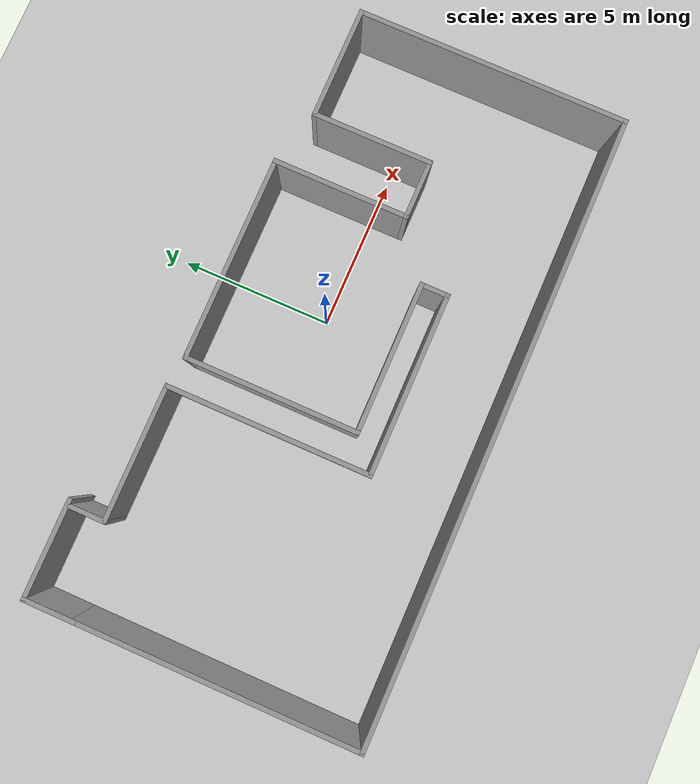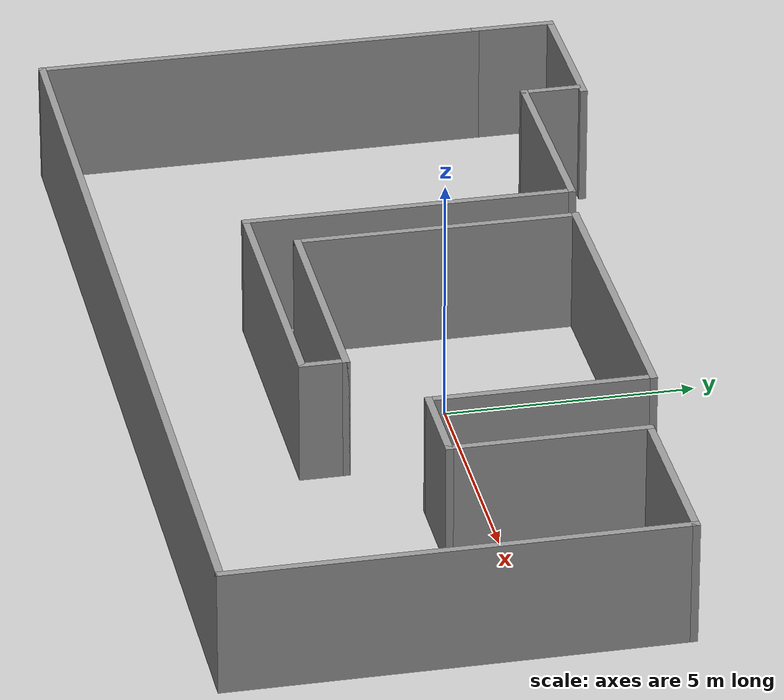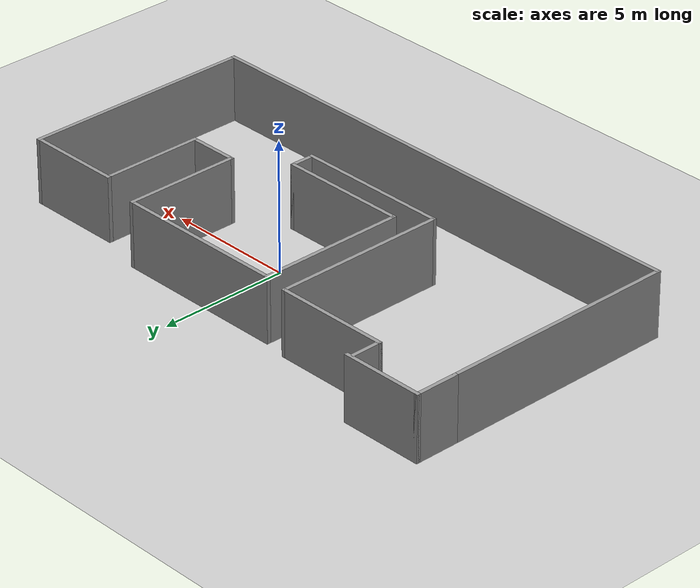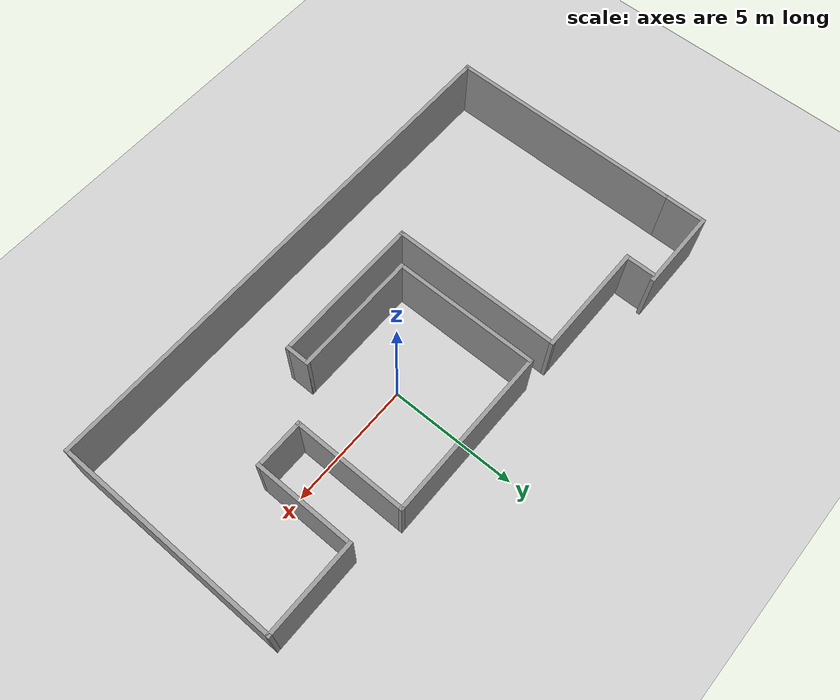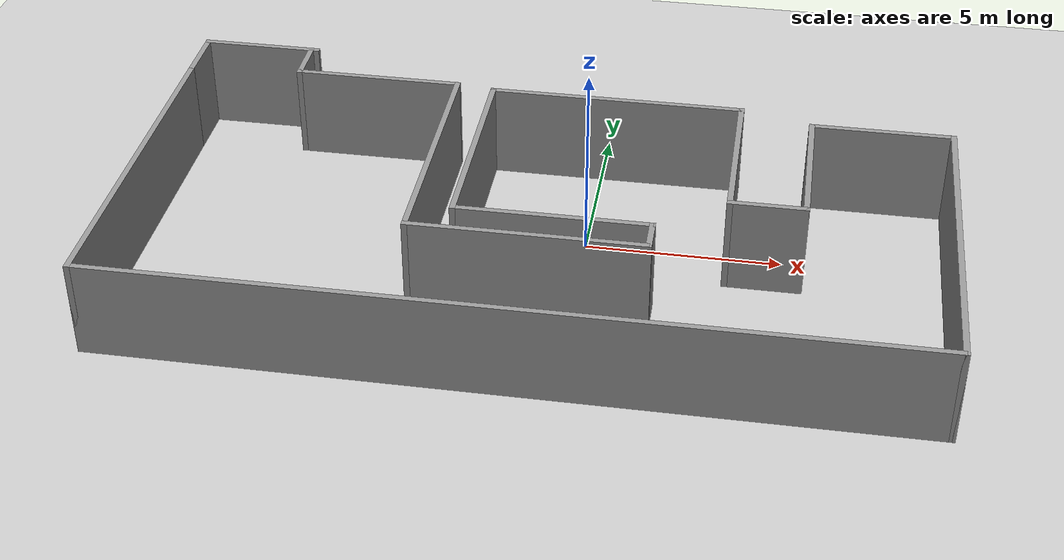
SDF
<sdf version="1.7">
 <world name="default">
  <light name="sun" type="directional">
   <pose>0 0 10 0 -0 0</pose>
   <diffuse>0.8 0.8 0.8 1</diffuse>
   <specular>0.2 0.2 0.2 1</specular>
   <attenuation>
    <range>1000</range>
    <constant>0.9</constant>
    <linear>0.01</linear>
    <quadratic>0.001</quadratic>
   </attenuation>
   <direction>-0.5 0.1 -0.9</direction>
   <spot><inner_angle>0</inner_angle><outer_angle>0</outer_angle><falloff>0</falloff></spot>
  </light>
  <model name="ground_plane">
   <static>1</static>
   <link name="link">
    <collision name="collision">
     <geometry><plane><normal>0 0 1</normal><size>100 100</size></plane></geometry>
     <surface>
      <contact><collide_bitmask>65535</collide_bitmask></contact>
      <friction><ode><mu>100</mu><mu2>50</mu2></ode></friction>
     </surface>
    </collision>
    <visual name="visual">
     <cast_shadows>0</cast_shadows>
     <geometry><plane><normal>0 0 1</normal><size>100 100</size></plane></geometry>
     <material>
      <script><uri>file://media/materials/scripts/gazebo.material</uri><name>Gazebo/Grey</name></script>
     </material>
    </visual>
   </link>
  </model>
  <gravity>0 0 -9.8</gravity>
  <magnetic_field>6e-06 2.3e-05 -4.2e-05</magnetic_field>
  <atmosphere type="adiabatic"/>
  <physics type="ode">
   <max_step_size>0.001</max_step_size>
   <real_time_factor>1</real_time_factor>
   <real_time_update_rate>1000</real_time_update_rate>
  </physics>
  <scene><ambient>0.4 0.4 0.4 1</ambient><background>0.7 0.7 0.7 1</background><shadows>1</shadows></scene>
  <spherical_coordinates>
   <surface_model>EARTH_WGS84</surface_model>
   <latitude_deg>0</latitude_deg>
   <longitude_deg>0</longitude_deg>
   <elevation>0</elevation>
   <heading_deg>0</heading_deg>
  </spherical_coordinates>
  <model name="my_world1">
   <pose>-1.10105 -0.731376 0 0 -0 0</pose>
   <link name="Wall_29">
    <collision name="Wall_29_Collision">
     <geometry><box><size>9.25 0.15 2.5</size></box></geometry>
     <pose>0 0 1.25 0 -0 0</pose>
    </collision>
    <visual name="Wall_29_Visual">
     <pose>0 0 1.25 0 -0 0</pose>
     <geometry><box><size>9.25 0.15 2.5</size></box></geometry>
     <material>
      <script><uri>file://media/materials/scripts/gazebo.material</uri><name>Gazebo/Grey</name></script>
      <ambient>1 1 1 1</ambient>
     </material>
     <meta><layer>0</layer></meta>
    </visual>
    <pose>-10.175 -0.8 0 0 -0 -1.5708</pose>
   </link>
   <link name="Wall_30">
    <collision name="Wall_30_Collision">
     <geometry><box><size>20.5 0.15 2.5</size></box></geometry>
     <pose>0 0 1.25 0 -0 0</pose>
    </collision>
    <visual name="Wall_30_Visual">
     <pose>0 0 1.25 0 -0 0</pose>
     <geometry><box><size>20.5 0.15 2.5</size></box></geometry>
     <material>
      <script><uri>file://media/materials/scripts/gazebo.material</uri><name>Gazebo/Grey</name></script>
      <ambient>1 1 1 1</ambient>
     </material>
     <meta><layer>0</layer></meta>
    </visual>
    <pose>0 -5.35 0 0 -0 0</pose>
   </link>
   <link name="Wall_31">
    <collision name="Wall_31_Collision">
     <geometry><box><size>9 0.15 2.5</size></box></geometry>
     <pose>0 0 1.25 0 -0 0</pose>
    </collision>
    <visual name="Wall_31_Visual">
     <pose>0 0 1.25 0 -0 0</pose>
     <geometry><box><size>9 0.15 2.5</size></box></geometry>
     <material>
      <script><uri>file://media/materials/scripts/gazebo.material</uri><name>Gazebo/Grey</name></script>
      <ambient>1 1 1 1</ambient>
     </material>
     <meta><layer>0</layer></meta>
    </visual>
    <pose>10.175 -0.925 0 0 -0 1.5708</pose>
   </link>
   <link name="Wall_32">
    <collision name="Wall_32_Collision">
     <geometry><box><size>3.75 0.15 2.5</size></box></geometry>
     <pose>0 0 1.25 0 -0 0</pose>
    </collision>
    <visual name="Wall_32_Visual">
     <pose>0 0 1.25 0 -0 0</pose>
     <geometry><box><size>3.75 0.15 2.5</size></box></geometry>
     <material>
      <script><uri>file://media/materials/scripts/gazebo.material</uri><name>Gazebo/Grey</name></script>
      <ambient>1 1 1 1</ambient>
     </material>
     <meta><layer>0</layer></meta>
    </visual>
    <pose>8.375 3.5 0 0 -0 3.14159</pose>
   </link>
   <link name="Wall_33">
    <collision name="Wall_33_Collision">
     <geometry><box><size>4 0.15 2.5</size></box></geometry>
     <pose>0 0 1.25 0 -0 0</pose>
    </collision>
    <visual name="Wall_33_Visual">
     <pose>0 0 1.25 0 -0 0</pose>
     <geometry><box><size>4 0.15 2.5</size></box></geometry>
     <material>
      <script><uri>file://media/materials/scripts/gazebo.material</uri><name>Gazebo/Grey</name></script>
      <ambient>1 1 1 1</ambient>
     </material>
     <meta><layer>0</layer></meta>
    </visual>
    <pose>6.575 1.575 0 0 -0 -1.5708</pose>
   </link>
   <link name="Wall_34">
    <collision name="Wall_34_Collision">
     <geometry><box><size>2 0.15 2.5</size></box></geometry>
     <pose>0 0 1.25 0 -0 0</pose>
    </collision>
    <visual name="Wall_34_Visual">
     <pose>0 0 1.25 0 -0 0</pose>
     <geometry><box><size>2 0.15 2.5</size></box></geometry>
     <material>
      <script><uri>file://media/materials/scripts/gazebo.material</uri><name>Gazebo/Grey</name></script>
      <ambient>1 1 1 1</ambient>
     </material>
     <meta><layer>0</layer></meta>
    </visual>
    <pose>5.65 -0.35 0 0 -0 3.14159</pose>
   </link>
   <link name="Wall_35">
    <collision name="Wall_35_Collision">
     <geometry><box><size>4.5 0.15 2.5</size></box></geometry>
     <pose>0 0 1.25 0 -0 0</pose>
    </collision>
    <visual name="Wall_35_Visual">
     <pose>0 0 1.25 0 -0 0</pose>
     <geometry><box><size>4.5 0.15 2.5</size></box></geometry>
     <material>
      <script><uri>file://media/materials/scripts/gazebo.material</uri><name>Gazebo/Grey</name></script>
      <ambient>1 1 1 1</ambient>
     </material>
     <meta><layer>0</layer></meta>
    </visual>
    <pose>4.725 1.825 0 0 -0 1.5708</pose>
   </link>
   <link name="Wall_36">
    <collision name="Wall_36_Collision">
     <geometry><box><size>6.75 0.15 2.5</size></box></geometry>
     <pose>0 0 1.25 0 -0 0</pose>
    </collision>
    <visual name="Wall_36_Visual">
     <pose>0 0 1.25 0 -0 0</pose>
     <geometry><box><size>6.75 0.15 2.5</size></box></geometry>
     <material>
      <script><uri>file://media/materials/scripts/gazebo.material</uri><name>Gazebo/Grey</name></script>
      <ambient>1 1 1 1</ambient>
     </material>
     <meta><layer>0</layer></meta>
    </visual>
    <pose>1.425 4 0 0 -0 3.14159</pose>
   </link>
   <link name="Wall_37">
    <collision name="Wall_37_Collision">
     <geometry><box><size>5.75 0.15 2.5</size></box></geometry>
     <pose>0 0 1.25 0 -0 0</pose>
    </collision>
    <visual name="Wall_37_Visual">
     <pose>0 0 1.25 0 -0 0</pose>
     <geometry><box><size>5.75 0.15 2.5</size></box></geometry>
     <material>
      <script><uri>file://media/materials/scripts/gazebo.material</uri><name>Gazebo/Grey</name></script>
      <ambient>1 1 1 1</ambient>
     </material>
     <meta><layer>0</layer></meta>
    </visual>
    <pose>-1.875 1.2 0 0 -0 -1.5708</pose>
   </link>
   <link name="Wall_38">
    <collision name="Wall_38_Collision">
     <geometry><box><size>5 0.15 2.5</size></box></geometry>
     <pose>0 0 1.25 0 -0 0</pose>
    </collision>
    <visual name="Wall_38_Visual">
     <pose>0 0 1.25 0 -0 0</pose>
     <geometry><box><size>5 0.15 2.5</size></box></geometry>
     <material>
      <script><uri>file://media/materials/scripts/gazebo.material</uri><name>Gazebo/Grey</name></script>
      <ambient>1 1 1 1</ambient>
     </material>
     <meta><layer>0</layer></meta>
    </visual>
    <pose>0.55 -1.6 0 0 -0 0</pose>
   </link>
   <link name="Wall_39">
    <collision name="Wall_39_Collision">
     <geometry><box><size>1 0.15 2.5</size></box></geometry>
     <pose>0 0 1.25 0 -0 0</pose>
    </collision>
    <visual name="Wall_39_Visual">
     <pose>0 0 1.25 0 -0 0</pose>
     <geometry><box><size>1 0.15 2.5</size></box></geometry>
     <material>
      <script><uri>file://media/materials/scripts/gazebo.material</uri><name>Gazebo/Grey</name></script>
      <ambient>1 1 1 1</ambient>
     </material>
     <meta><layer>0</layer></meta>
    </visual>
    <pose>2.975 -2.025 0 0 -0 -1.5708</pose>
   </link>
   <link name="Wall_40">
    <collision name="Wall_40_Collision">
     <geometry><box><size>6 0.15 2.5</size></box></geometry>
     <pose>0 0 1.25 0 -0 0</pose>
    </collision>
    <visual name="Wall_40_Visual">
     <pose>0 0 1.25 0 -0 0</pose>
     <geometry><box><size>6 0.15 2.5</size></box></geometry>
     <material>
      <script><uri>file://media/materials/scripts/gazebo.material</uri><name>Gazebo/Grey</name></script>
      <ambient>1 1 1 1</ambient>
     </material>
     <meta><layer>0</layer></meta>
    </visual>
    <pose>0.05 -2.45 0 0 -0 3.14159</pose>
   </link>
   <link name="Wall_41">
    <collision name="Wall_41_Collision">
     <geometry><box><size>6.75 0.15 2.5</size></box></geometry>
     <pose>0 0 1.25 0 -0 0</pose>
    </collision>
    <visual name="Wall_41_Visual">
     <pose>0 0 1.25 0 -0 0</pose>
     <geometry><box><size>6.75 0.15 2.5</size></box></geometry>
     <material>
      <script><uri>file://media/materials/scripts/gazebo.material</uri><name>Gazebo/Grey</name></script>
      <ambient>1 1 1 1</ambient>
     </material>
     <meta><layer>0</layer></meta>
    </visual>
    <pose>-2.875 0.85 0 0 -0 1.5708</pose>
   </link>
   <link name="Wall_42">
    <collision name="Wall_42_Collision">
     <geometry><box><size>4.5 0.15 2.5</size></box></geometry>
     <pose>0 0 1.25 0 -0 0</pose>
    </collision>
    <visual name="Wall_42_Visual">
     <pose>0 0 1.25 0 -0 0</pose>
     <geometry><box><size>4.5 0.15 2.5</size></box></geometry>
     <material>
      <script><uri>file://media/materials/scripts/gazebo.material</uri><name>Gazebo/Grey</name></script>
      <ambient>1 1 1 1</ambient>
     </material>
     <meta><layer>0</layer></meta>
    </visual>
    <pose>-5.05 4.15 0 0 -0 3.14159</pose>
   </link>
   <link name="Wall_43">
    <collision name="Wall_43_Collision">
     <geometry><box><size>1.25 0.15 2.5</size></box></geometry>
     <pose>0 0 1.25 0 -0 0</pose>
    </collision>
    <visual name="Wall_43_Visual">
     <pose>0 0 1.25 0 -0 0</pose>
     <geometry><box><size>1.25 0.15 2.5</size></box></geometry>
     <material>
      <script><uri>file://media/materials/scripts/gazebo.material</uri><name>Gazebo/Grey</name></script>
      <ambient>1 1 1 1</ambient>
     </material>
     <meta><layer>0</layer></meta>
    </visual>
    <pose>-7.225 4.7 0 0 -0 1.5708</pose>
   </link>
   <link name="Wall_46">
    <collision name="Wall_46_Collision">
     <geometry><box><size>1.75 0.15 2.5</size></box></geometry>
     <pose>0 0 1.25 0 -0 0</pose>
    </collision>
    <visual name="Wall_46_Visual">
     <pose>0 0 1.25 0 -0 0</pose>
     <geometry><box><size>1.75 0.15 2.5</size></box></geometry>
     <material>
      <script><uri>file://media/materials/scripts/gazebo.material</uri><name>Gazebo/Grey</name></script>
      <ambient>1 1 1 1</ambient>
     </material>
     <meta><layer>0</layer></meta>
    </visual>
    <pose>-10.175 4.55 0 0 -0 1.5708</pose>
   </link>
   <link name="Wall_47">
    <collision name="Wall_47_Collision">
     <geometry><box><size>3.25 0.15 2.5</size></box></geometry>
     <pose>0 0 1.25 0 -0 0</pose>
    </collision>
    <visual name="Wall_47_Visual">
     <pose>0 0 1.25 0 -0 0</pose>
     <geometry><box><size>3.25 0.15 2.5</size></box></geometry>
     <material>
      <script><uri>file://media/materials/scripts/gazebo.material</uri><name>Gazebo/Grey</name></script>
      <ambient>1 1 1 1</ambient>
     </material>
     <meta><layer>0</layer></meta>
    </visual>
    <pose>-8.625 5.35 0 0 -0 0</pose>
   </link>
   <static>1</static>
  </model>
 </world>
</sdf>
